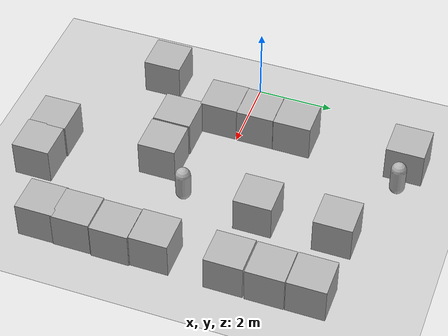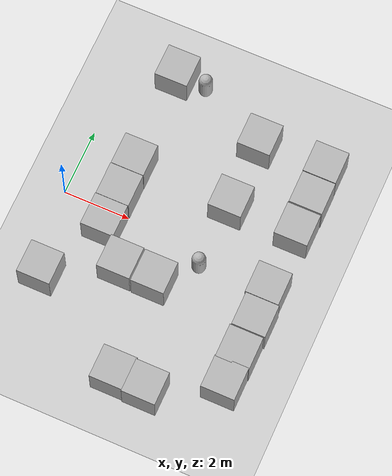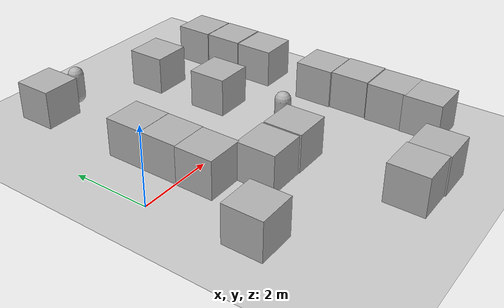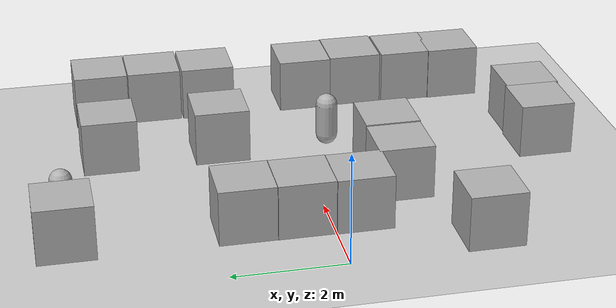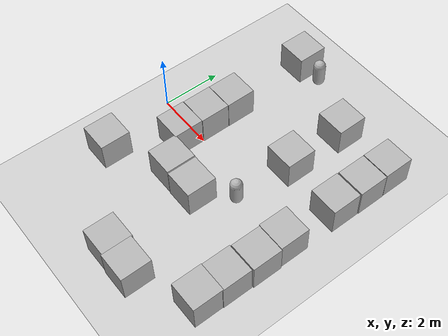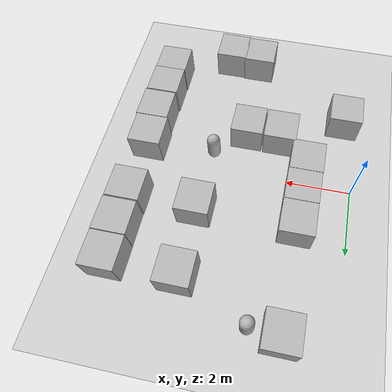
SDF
<sdf version='1.9'>
  <world name='empty'>
    <physics name='1ms' type='ignored'>
      <max_step_size>0.001</max_step_size>
      <real_time_factor>1</real_time_factor>
      <real_time_update_rate>1000</real_time_update_rate>
    </physics>
    <plugin name='gz::sim::systems::Physics' filename='ignition-gazebo-physics-system'/>
    <plugin name='gz::sim::systems::UserCommands' filename='ignition-gazebo-user-commands-system'/>
    <plugin name='gz::sim::systems::SceneBroadcaster' filename='ignition-gazebo-scene-broadcaster-system'/>
    <plugin name='gz::sim::systems::Contact' filename='ignition-gazebo-contact-system'/>
    <plugin name='gz::sim::systems::Sensors' filename='gz-sim-sensors-system'>
      <render_engine>ogre2</render_engine>
    </plugin>
    <gravity>0 0 -9.8</gravity>
    <magnetic_field>6e-06 2.3e-05 -4.2e-05</magnetic_field>
    <atmosphere type='adiabatic'/>
    <scene>
      <ambient>0.4 0.4 0.4 1</ambient>
      <background>0.7 0.7 0.7 1</background>
      <shadows>false</shadows>
    </scene>
    <model name='ground_plane'>
      <static>true</static>
      <link name='link'>
        <collision name='collision'>
          <geometry>
            <plane>
              <normal>0 0 1</normal>
              <size>100 100</size>
            </plane>
          </geometry>
          <surface>
            <friction>
              <ode/>
            </friction>
            <bounce/>
            <contact/>
          </surface>
        </collision>
        <visual name='visual'>
          <geometry>
            <plane>
              <normal>0 0 1</normal>
              <size>100 100</size>
            </plane>
          </geometry>
          <material>
            <ambient>0.8 0.8 0.8 1</ambient>
            <diffuse>0.8 0.8 0.8 1</diffuse>
            <specular>0.8 0.8 0.8 1</specular>
          </material>
        </visual>
        <pose>0 0 0 0 -0 0</pose>
        <inertial>
          <pose>0 0 0 0 -0 0</pose>
          <mass>1</mass>
          <inertia>
            <ixx>1</ixx>
            <ixy>0</ixy>
            <ixz>0</ixz>
            <iyy>1</iyy>
            <iyz>0</iyz>
            <izz>1</izz>
          </inertia>
        </inertial>
        <enable_wind>false</enable_wind>
      </link>
      <pose>0 0 0 0 -0 0</pose>
      <self_collide>false</self_collide>
    </model>
    <model name='box'>
      <pose>1.50794 1.50418 0.5 0 -0 0</pose>
      <link name='box_link'>
        <inertial>
          <inertia>
            <ixx>0.16666</ixx>
            <ixy>0</ixy>
            <ixz>0</ixz>
            <iyy>0.16666</iyy>
            <iyz>0</iyz>
            <izz>0.16666</izz>
          </inertia>
          <mass>1</mass>
          <pose>0 0 0 0 -0 0</pose>
        </inertial>
        <collision name='box_collision'>
          <geometry>
            <box>
              <size>1 1 1</size>
            </box>
          </geometry>
          <surface>
            <friction>
              <ode/>
            </friction>
            <bounce/>
            <contact/>
          </surface>
        </collision>
        <visual name='box_visual'>
          <geometry>
            <box>
              <size>1 1 1</size>
            </box>
          </geometry>
          <material>
            <ambient>0.3 0.3 0.3 1</ambient>
            <diffuse>0.7 0.7 0.7 1</diffuse>
            <specular>1 1 1 1</specular>
          </material>
        </visual>
        <pose>0 0 0 0 -0 0</pose>
        <enable_wind>false</enable_wind>
      </link>
      <static>false</static>
      <self_collide>false</self_collide>
    </model>
    <model name='box_0'>
      <pose>1.50186 0.497619 0.5 0 -0 0</pose>
      <link name='box_link'>
        <inertial>
          <inertia>
            <ixx>0.16666</ixx>
            <ixy>0</ixy>
            <ixz>0</ixz>
            <iyy>0.16666</iyy>
            <iyz>0</iyz>
            <izz>0.16666</izz>
          </inertia>
          <mass>1</mass>
          <pose>0 0 0 0 -0 0</pose>
        </inertial>
        <collision name='box_collision'>
          <geometry>
            <box>
              <size>1 1 1</size>
            </box>
          </geometry>
          <surface>
            <friction>
              <ode/>
            </friction>
            <bounce/>
            <contact/>
          </surface>
        </collision>
        <visual name='box_visual'>
          <geometry>
            <box>
              <size>1 1 1</size>
            </box>
          </geometry>
          <material>
            <ambient>0.3 0.3 0.3 1</ambient>
            <diffuse>0.7 0.7 0.7 1</diffuse>
            <specular>1 1 1 1</specular>
          </material>
        </visual>
        <pose>0 0 0 0 -0 0</pose>
        <enable_wind>false</enable_wind>
      </link>
      <static>false</static>
      <self_collide>false</self_collide>
    </model>
    <model name='box_1'>
      <pose>1.48683 -0.506951 0.5 0 -0 0</pose>
      <link name='box_link'>
        <inertial>
          <inertia>
            <ixx>0.16666</ixx>
            <ixy>0</ixy>
            <ixz>0</ixz>
            <iyy>0.16666</iyy>
            <iyz>0</iyz>
            <izz>0.16666</izz>
          </inertia>
          <mass>1</mass>
          <pose>0 0 0 0 -0 0</pose>
        </inertial>
        <collision name='box_collision'>
          <geometry>
            <box>
              <size>1 1 1</size>
            </box>
          </geometry>
          <surface>
            <friction>
              <ode/>
            </friction>
            <bounce/>
            <contact/>
          </surface>
        </collision>
        <visual name='box_visual'>
          <geometry>
            <box>
              <size>1 1 1</size>
            </box>
          </geometry>
          <material>
            <ambient>0.3 0.3 0.3 1</ambient>
            <diffuse>0.7 0.7 0.7 1</diffuse>
            <specular>1 1 1 1</specular>
          </material>
        </visual>
        <pose>0 0 0 0 -0 0</pose>
        <enable_wind>false</enable_wind>
      </link>
      <static>false</static>
      <self_collide>false</self_collide>
    </model>
    <model name='box_3'>
      <pose>1.50045 4.51511 0.5 0 -0 0</pose>
      <link name='box_link'>
        <inertial>
          <inertia>
            <ixx>0.16666</ixx>
            <ixy>0</ixy>
            <ixz>0</ixz>
            <iyy>0.16666</iyy>
            <iyz>0</iyz>
            <izz>0.16666</izz>
          </inertia>
          <mass>1</mass>
          <pose>0 0 0 0 -0 0</pose>
        </inertial>
        <collision name='box_collision'>
          <geometry>
            <box>
              <size>1 1 1</size>
            </box>
          </geometry>
          <surface>
            <friction>
              <ode/>
            </friction>
            <bounce/>
            <contact/>
          </surface>
        </collision>
        <visual name='box_visual'>
          <geometry>
            <box>
              <size>1 1 1</size>
            </box>
          </geometry>
          <material>
            <ambient>0.3 0.3 0.3 1</ambient>
            <diffuse>0.7 0.7 0.7 1</diffuse>
            <specular>1 1 1 1</specular>
          </material>
        </visual>
        <pose>0 0 0 0 -0 0</pose>
        <enable_wind>false</enable_wind>
      </link>
      <static>false</static>
      <self_collide>false</self_collide>
    </model>
    <model name='box_25'>
      <pose>3.5753 -4.4555 0.5 0 -0 0</pose>
      <link name='box_link'>
        <inertial>
          <inertia>
            <ixx>0.16666</ixx>
            <ixy>0</ixy>
            <ixz>0</ixz>
            <iyy>0.16666</iyy>
            <iyz>0</iyz>
            <izz>0.16666</izz>
          </inertia>
          <mass>1</mass>
          <pose>0 0 0 0 -0 0</pose>
        </inertial>
        <collision name='box_collision'>
          <geometry>
            <box>
              <size>1 1 1</size>
            </box>
          </geometry>
          <surface>
            <friction>
              <ode/>
            </friction>
            <bounce/>
            <contact/>
          </surface>
        </collision>
        <visual name='box_visual'>
          <geometry>
            <box>
              <size>1 1 1</size>
            </box>
          </geometry>
          <material>
            <ambient>0.3 0.3 0.3 1</ambient>
            <diffuse>0.7 0.7 0.7 1</diffuse>
            <specular>1 1 1 1</specular>
          </material>
        </visual>
        <pose>0 0 0 0 -0 0</pose>
        <enable_wind>false</enable_wind>
      </link>
      <static>false</static>
      <self_collide>false</self_collide>
    </model>
    <model name='box_26'>
      <pose>4.5464 -4.48762 0.5 0 -0 0</pose>
      <link name='box_link'>
        <inertial>
          <inertia>
            <ixx>0.16666</ixx>
            <ixy>0</ixy>
            <ixz>0</ixz>
            <iyy>0.16666</iyy>
            <iyz>0</iyz>
            <izz>0.16666</izz>
          </inertia>
          <mass>1</mass>
          <pose>0 0 0 0 -0 0</pose>
        </inertial>
        <collision name='box_collision'>
          <geometry>
            <box>
              <size>1 1 1</size>
            </box>
          </geometry>
          <surface>
            <friction>
              <ode/>
            </friction>
            <bounce/>
            <contact/>
          </surface>
        </collision>
        <visual name='box_visual'>
          <geometry>
            <box>
              <size>1 1 1</size>
            </box>
          </geometry>
          <material>
            <ambient>0.3 0.3 0.3 1</ambient>
            <diffuse>0.7 0.7 0.7 1</diffuse>
            <specular>1 1 1 1</specular>
          </material>
        </visual>
        <pose>0 0 0 0 -0 0</pose>
        <enable_wind>false</enable_wind>
      </link>
      <static>false</static>
      <self_collide>false</self_collide>
    </model>
    <model name='box_2'>
      <pose>4.50293 3.50052 0.5 0 -0 0</pose>
      <link name='box_link'>
        <inertial>
          <inertia>
            <ixx>0.16666</ixx>
            <ixy>0</ixy>
            <ixz>0</ixz>
            <iyy>0.16666</iyy>
            <iyz>0</iyz>
            <izz>0.16666</izz>
          </inertia>
          <mass>1</mass>
          <pose>0 0 0 0 -0 0</pose>
        </inertial>
        <collision name='box_collision'>
          <geometry>
            <box>
              <size>1 1 1</size>
            </box>
          </geometry>
          <surface>
            <friction>
              <ode/>
            </friction>
            <bounce/>
            <contact/>
          </surface>
        </collision>
        <visual name='box_visual'>
          <geometry>
            <box>
              <size>1 1 1</size>
            </box>
          </geometry>
          <material>
            <ambient>0.3 0.3 0.3 1</ambient>
            <diffuse>0.7 0.7 0.7 1</diffuse>
            <specular>1 1 1 1</specular>
          </material>
        </visual>
        <pose>0 0 0 0 -0 0</pose>
        <enable_wind>false</enable_wind>
      </link>
      <static>false</static>
      <self_collide>false</self_collide>
    </model>
    <model name='box_4'>
      <pose>4.4991 1.45204 0.5 0 -0 0</pose>
      <link name='box_link'>
        <inertial>
          <inertia>
            <ixx>0.16666</ixx>
            <ixy>0</ixy>
            <ixz>0</ixz>
            <iyy>0.16666</iyy>
            <iyz>0</iyz>
            <izz>0.16666</izz>
          </inertia>
          <mass>1</mass>
          <pose>0 0 0 0 -0 0</pose>
        </inertial>
        <collision name='box_collision'>
          <geometry>
            <box>
              <size>1 1 1</size>
            </box>
          </geometry>
          <surface>
            <friction>
              <ode/>
            </friction>
            <bounce/>
            <contact/>
          </surface>
        </collision>
        <visual name='box_visual'>
          <geometry>
            <box>
              <size>1 1 1</size>
            </box>
          </geometry>
          <material>
            <ambient>0.3 0.3 0.3 1</ambient>
            <diffuse>0.7 0.7 0.7 1</diffuse>
            <specular>1 1 1 1</specular>
          </material>
        </visual>
        <pose>0 0 0 0 -0 0</pose>
        <enable_wind>false</enable_wind>
      </link>
      <static>false</static>
      <self_collide>false</self_collide>
    </model>
    <model name='box_5'>
      <pose>0.464179 -2.50157 0.5 0 -0 0</pose>
      <link name='box_link'>
        <inertial>
          <inertia>
            <ixx>0.16666</ixx>
            <ixy>0</ixy>
            <ixz>0</ixz>
            <iyy>0.16666</iyy>
            <iyz>0</iyz>
            <izz>0.16666</izz>
          </inertia>
          <mass>1</mass>
          <pose>0 0 0 0 -0 0</pose>
        </inertial>
        <collision name='box_collision'>
          <geometry>
            <box>
              <size>1 1 1</size>
            </box>
          </geometry>
          <surface>
            <friction>
              <ode/>
            </friction>
            <bounce/>
            <contact/>
          </surface>
        </collision>
        <visual name='box_visual'>
          <geometry>
            <box>
              <size>1 1 1</size>
            </box>
          </geometry>
          <material>
            <ambient>0.3 0.3 0.3 1</ambient>
            <diffuse>0.7 0.7 0.7 1</diffuse>
            <specular>1 1 1 1</specular>
          </material>
        </visual>
        <pose>0 0 0 0 -0 0</pose>
        <enable_wind>false</enable_wind>
      </link>
      <static>false</static>
      <self_collide>false</self_collide>
    </model>
    <model name='box_6'>
      <pose>2.41613 -1.46633 0.5 0 -0 0</pose>
      <link name='box_link'>
        <inertial>
          <inertia>
            <ixx>0.16666</ixx>
            <ixy>0</ixy>
            <ixz>0</ixz>
            <iyy>0.16666</iyy>
            <iyz>0</iyz>
            <izz>0.16666</izz>
          </inertia>
          <mass>1</mass>
          <pose>0 0 0 0 -0 0</pose>
        </inertial>
        <collision name='box_collision'>
          <geometry>
            <box>
              <size>1 1 1</size>
            </box>
          </geometry>
          <surface>
            <friction>
              <ode/>
            </friction>
            <bounce/>
            <contact/>
          </surface>
        </collision>
        <visual name='box_visual'>
          <geometry>
            <box>
              <size>1 1 1</size>
            </box>
          </geometry>
          <material>
            <ambient>0.3 0.3 0.3 1</ambient>
            <diffuse>0.7 0.7 0.7 1</diffuse>
            <specular>1 1 1 1</specular>
          </material>
        </visual>
        <pose>0 0 0 0 -0 0</pose>
        <enable_wind>false</enable_wind>
      </link>
      <static>false</static>
      <self_collide>false</self_collide>
    </model>
    <model name='box_7'>
      <pose>3.4595 -1.48208 0.5 0 -0 0</pose>
      <link name='box_link'>
        <inertial>
          <inertia>
            <ixx>0.16666</ixx>
            <ixy>0</ixy>
            <ixz>0</ixz>
            <iyy>0.16666</iyy>
            <iyz>0</iyz>
            <izz>0.16666</izz>
          </inertia>
          <mass>1</mass>
          <pose>0 0 0 0 -0 0</pose>
        </inertial>
        <collision name='box_collision'>
          <geometry>
            <box>
              <size>1 1 1</size>
            </box>
          </geometry>
          <surface>
            <friction>
              <ode/>
            </friction>
            <bounce/>
            <contact/>
          </surface>
        </collision>
        <visual name='box_visual'>
          <geometry>
            <box>
              <size>1 1 1</size>
            </box>
          </geometry>
          <material>
            <ambient>0.3 0.3 0.3 1</ambient>
            <diffuse>0.7 0.7 0.7 1</diffuse>
            <specular>1 1 1 1</specular>
          </material>
        </visual>
        <pose>0 0 0 0 -0 0</pose>
        <enable_wind>false</enable_wind>
      </link>
      <static>false</static>
      <self_collide>false</self_collide>
    </model>
    <model name='box_8'>
      <pose>6.52848 3.47165 0.5 0 -0 0</pose>
      <link name='box_link'>
        <inertial>
          <inertia>
            <ixx>0.16666</ixx>
            <ixy>0</ixy>
            <ixz>0</ixz>
            <iyy>0.16666</iyy>
            <iyz>0</iyz>
            <izz>0.16666</izz>
          </inertia>
          <mass>1</mass>
          <pose>0 0 0 0 -0 0</pose>
        </inertial>
        <collision name='box_collision'>
          <geometry>
            <box>
              <size>1 1 1</size>
            </box>
          </geometry>
          <surface>
            <friction>
              <ode/>
            </friction>
            <bounce/>
            <contact/>
          </surface>
        </collision>
        <visual name='box_visual'>
          <geometry>
            <box>
              <size>1 1 1</size>
            </box>
          </geometry>
          <material>
            <ambient>0.3 0.3 0.3 1</ambient>
            <diffuse>0.7 0.7 0.7 1</diffuse>
            <specular>1 1 1 1</specular>
          </material>
        </visual>
        <pose>0 0 0 0 -0 0</pose>
        <enable_wind>false</enable_wind>
      </link>
      <static>false</static>
      <self_collide>false</self_collide>
    </model>
    <model name='box_9'>
      <pose>6.53547 2.45389 0.5 0 -0 0</pose>
      <link name='box_link'>
        <inertial>
          <inertia>
            <ixx>0.16666</ixx>
            <ixy>0</ixy>
            <ixz>0</ixz>
            <iyy>0.16666</iyy>
            <iyz>0</iyz>
            <izz>0.16666</izz>
          </inertia>
          <mass>1</mass>
          <pose>0 0 0 0 -0 0</pose>
        </inertial>
        <collision name='box_collision'>
          <geometry>
            <box>
              <size>1 1 1</size>
            </box>
          </geometry>
          <surface>
            <friction>
              <ode/>
            </friction>
            <bounce/>
            <contact/>
          </surface>
        </collision>
        <visual name='box_visual'>
          <geometry>
            <box>
              <size>1 1 1</size>
            </box>
          </geometry>
          <material>
            <ambient>0.3 0.3 0.3 1</ambient>
            <diffuse>0.7 0.7 0.7 1</diffuse>
            <specular>1 1 1 1</specular>
          </material>
        </visual>
        <pose>0 0 0 0 -0 0</pose>
        <enable_wind>false</enable_wind>
      </link>
      <static>false</static>
      <self_collide>false</self_collide>
    </model>
    <model name='box_10'>
      <pose>6.52185 1.41723 0.5 0 -0 0</pose>
      <link name='box_link'>
        <inertial>
          <inertia>
            <ixx>0.16666</ixx>
            <ixy>0</ixy>
            <ixz>0</ixz>
            <iyy>0.16666</iyy>
            <iyz>0</iyz>
            <izz>0.16666</izz>
          </inertia>
          <mass>1</mass>
          <pose>0 0 0 0 -0 0</pose>
        </inertial>
        <collision name='box_collision'>
          <geometry>
            <box>
              <size>1 1 1</size>
            </box>
          </geometry>
          <surface>
            <friction>
              <ode/>
            </friction>
            <bounce/>
            <contact/>
          </surface>
        </collision>
        <visual name='box_visual'>
          <geometry>
            <box>
              <size>1 1 1</size>
            </box>
          </geometry>
          <material>
            <ambient>0.3 0.3 0.3 1</ambient>
            <diffuse>0.7 0.7 0.7 1</diffuse>
            <specular>1 1 1 1</specular>
          </material>
        </visual>
        <pose>0 0 0 0 -0 0</pose>
        <enable_wind>false</enable_wind>
      </link>
      <static>false</static>
      <self_collide>false</self_collide>
    </model>
    <model name='box_11'>
      <pose>6.47906 -0.500695 0.5 0 -0 0</pose>
      <link name='box_link'>
        <inertial>
          <inertia>
            <ixx>0.16666</ixx>
            <ixy>0</ixy>
            <ixz>0</ixz>
            <iyy>0.16666</iyy>
            <iyz>0</iyz>
            <izz>0.16666</izz>
          </inertia>
          <mass>1</mass>
          <pose>0 0 0 0 -0 0</pose>
        </inertial>
        <collision name='box_collision'>
          <geometry>
            <box>
              <size>1 1 1</size>
            </box>
          </geometry>
          <surface>
            <friction>
              <ode/>
            </friction>
            <bounce/>
            <contact/>
          </surface>
        </collision>
        <visual name='box_visual'>
          <geometry>
            <box>
              <size>1 1 1</size>
            </box>
          </geometry>
          <material>
            <ambient>0.3 0.3 0.3 1</ambient>
            <diffuse>0.7 0.7 0.7 1</diffuse>
            <specular>1 1 1 1</specular>
          </material>
        </visual>
        <pose>0 0 0 0 -0 0</pose>
        <enable_wind>false</enable_wind>
      </link>
      <static>false</static>
      <self_collide>false</self_collide>
    </model>
    <model name='box_12'>
      <pose>6.51292 -1.51051 0.5 0 -0 0</pose>
      <link name='box_link'>
        <inertial>
          <inertia>
            <ixx>0.16666</ixx>
            <ixy>0</ixy>
            <ixz>0</ixz>
            <iyy>0.16666</iyy>
            <iyz>0</iyz>
            <izz>0.16666</izz>
          </inertia>
          <mass>1</mass>
          <pose>0 0 0 0 -0 0</pose>
        </inertial>
        <collision name='box_collision'>
          <geometry>
            <box>
              <size>1 1 1</size>
            </box>
          </geometry>
          <surface>
            <friction>
              <ode/>
            </friction>
            <bounce/>
            <contact/>
          </surface>
        </collision>
        <visual name='box_visual'>
          <geometry>
            <box>
              <size>1 1 1</size>
            </box>
          </geometry>
          <material>
            <ambient>0.3 0.3 0.3 1</ambient>
            <diffuse>0.7 0.7 0.7 1</diffuse>
            <specular>1 1 1 1</specular>
          </material>
        </visual>
        <pose>0 0 0 0 -0 0</pose>
        <enable_wind>false</enable_wind>
      </link>
      <static>false</static>
      <self_collide>false</self_collide>
    </model>
    <model name='box_13'>
      <pose>6.47981 -2.54001 0.5 0 -0 0</pose>
      <link name='box_link'>
        <inertial>
          <inertia>
            <ixx>0.16666</ixx>
            <ixy>0</ixy>
            <ixz>0</ixz>
            <iyy>0.16666</iyy>
            <iyz>0</iyz>
            <izz>0.16666</izz>
          </inertia>
          <mass>1</mass>
          <pose>0 0 0 0 -0 0</pose>
        </inertial>
        <collision name='box_collision'>
          <geometry>
            <box>
              <size>1 1 1</size>
            </box>
          </geometry>
          <surface>
            <friction>
              <ode/>
            </friction>
            <bounce/>
            <contact/>
          </surface>
        </collision>
        <visual name='box_visual'>
          <geometry>
            <box>
              <size>1 1 1</size>
            </box>
          </geometry>
          <material>
            <ambient>0.3 0.3 0.3 1</ambient>
            <diffuse>0.7 0.7 0.7 1</diffuse>
            <specular>1 1 1 1</specular>
          </material>
        </visual>
        <pose>0 0 0 0 -0 0</pose>
        <enable_wind>false</enable_wind>
      </link>
      <static>false</static>
      <self_collide>false</self_collide>
    </model>
    <model name='box_14'>
      <pose>6.46118 -3.49508 0.5 0 -0 0</pose>
      <link name='box_link'>
        <inertial>
          <inertia>
            <ixx>0.16666</ixx>
            <ixy>0</ixy>
            <ixz>0</ixz>
            <iyy>0.16666</iyy>
            <iyz>0</iyz>
            <izz>0.16666</izz>
          </inertia>
          <mass>1</mass>
          <pose>0 0 0 0 -0 0</pose>
        </inertial>
        <collision name='box_collision'>
          <geometry>
            <box>
              <size>1 1 1</size>
            </box>
          </geometry>
          <surface>
            <friction>
              <ode/>
            </friction>
            <bounce/>
            <contact/>
          </surface>
        </collision>
        <visual name='box_visual'>
          <geometry>
            <box>
              <size>1 1 1</size>
            </box>
          </geometry>
          <material>
            <ambient>0.3 0.3 0.3 1</ambient>
            <diffuse>0.7 0.7 0.7 1</diffuse>
            <specular>1 1 1 1</specular>
          </material>
        </visual>
        <pose>0 0 0 0 -0 0</pose>
        <enable_wind>false</enable_wind>
      </link>
      <static>false</static>
      <self_collide>false</self_collide>
    </model>
    <model name='capsule'>
      <pose>2.39699 4.47671 0.5 0 -0 0</pose>
      <link name='capsule_link'>
        <inertial>
          <inertia>
            <ixx>0.074153999999999998</ixx>
            <ixy>0</ixy>
            <ixz>0</ixz>
            <iyy>0.074153999999999998</iyy>
            <iyz>0</iyz>
            <izz>0.018769000000000001</izz>
          </inertia>
          <mass>1</mass>
          <pose>0 0 0 0 -0 0</pose>
        </inertial>
        <collision name='capsule_collision'>
          <geometry>
            <capsule>
              <radius>0.20000000000000001</radius>
              <length>0.59999999999999998</length>
            </capsule>
          </geometry>
          <surface>
            <friction>
              <ode/>
            </friction>
            <bounce/>
            <contact/>
          </surface>
        </collision>
        <visual name='capsule_visual'>
          <geometry>
            <capsule>
              <radius>0.20000000000000001</radius>
              <length>0.59999999999999998</length>
            </capsule>
          </geometry>
          <material>
            <ambient>0.3 0.3 0.3 1</ambient>
            <diffuse>0.7 0.7 0.7 1</diffuse>
            <specular>1 1 1 1</specular>
          </material>
        </visual>
        <pose>0 0 0 0 -0 0</pose>
        <enable_wind>false</enable_wind>
      </link>
      <static>false</static>
      <self_collide>false</self_collide>
    </model>
    <model name='capsule_0'>
      <pose>4.4101 -0.5764 0.5 0 -0 0</pose>
      <link name='capsule_link'>
        <inertial>
          <inertia>
            <ixx>0.074153999999999998</ixx>
            <ixy>0</ixy>
            <ixz>0</ixz>
            <iyy>0.074153999999999998</iyy>
            <iyz>0</iyz>
            <izz>0.018769000000000001</izz>
          </inertia>
          <mass>1</mass>
          <pose>0 0 0 0 -0 0</pose>
        </inertial>
        <collision name='capsule_collision'>
          <geometry>
            <capsule>
              <radius>0.20000000000000001</radius>
              <length>0.59999999999999998</length>
            </capsule>
          </geometry>
          <surface>
            <friction>
              <ode/>
            </friction>
            <bounce/>
            <contact/>
          </surface>
        </collision>
        <visual name='capsule_visual'>
          <geometry>
            <capsule>
              <radius>0.20000000000000001</radius>
              <length>0.59999999999999998</length>
            </capsule>
          </geometry>
          <material>
            <ambient>0.3 0.3 0.3 1</ambient>
            <diffuse>0.7 0.7 0.7 1</diffuse>
            <specular>1 1 1 1</specular>
          </material>
        </visual>
        <pose>0 0 0 0 -0 0</pose>
        <enable_wind>false</enable_wind>
      </link>
      <static>false</static>
      <self_collide>false</self_collide>
    </model>
    <light name='sun' type='directional'>
      <pose>0 0 10 0 -0 0</pose>
      <cast_shadows>false</cast_shadows>
      <intensity>1</intensity>
      <direction>-0.5 0.1 -0.9</direction>
      <diffuse>0.8 0.8 0.8 1</diffuse>
      <specular>0.2 0.2 0.2 1</specular>
      <attenuation>
        <range>1000</range>
        <linear>0.01</linear>
        <constant>0.90000000000000002</constant>
        <quadratic>0.001</quadratic>
      </attenuation>
      <spot>
        <inner_angle>0</inner_angle>
        <outer_angle>0</outer_angle>
        <falloff>0</falloff>
      </spot>
    </light>
  </world>
</sdf>
